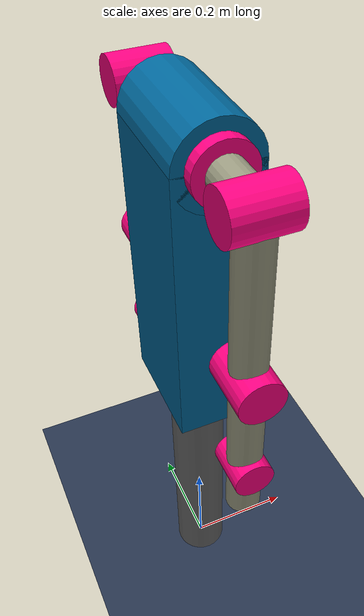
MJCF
<mujoco model="Dual Arm : Sample">
	<compiler angle="degree" coordinate="local" inertiafromgeom="true" autolimits="true" texturedir="PNG"/>

	<option	timestep="0.0005" gravity="0 0 -9.81" integrator="Euler" o_solref="0.005 0.2" o_solimp="0.95 0.98 0.01 0.5 2"
					cone="elliptic" jacobian="auto" solver="Newton" tolerance="1e-10" impratio="1.0"/>

	<option>
		<flag gravity="enable" sensornoise="disable" override="enable"/>
	</option>

	<visual>
		<global fovy="45" linewidth="2" glow="0.3"/>
		<quality shadowsize="4096" numslices="28"/>
		<map stiffness="50" stiffnessrot="100"/>
		<scale forcewidth="0.03" contactwidth="0.15" contactheight="0.1" connect="0.1" com="0.2" jointlength="2.5" jointwidth="0.05"
					 actuatorlength="0.5" actuatorwidth="0.3" framelength="1" framewidth="0.03"/>
		<rgba haze="0.6 0.8 0.9 1" force="0 1 0 0.5" com="0 0 1 1"/>
	</visual>

	<default>
		<geom contype="1" conaffinity="1" condim="3" material="MatLink"/>
		<joint limited="false" damping="0.5" armature="0.1" stiffness="0" frictionloss="0.1"/>
		<motor gear="100 0 0 0 0 0" ctrllimited="true" ctrlrange="-100 100"/>
	</default>

	<asset>
		<texture name="sky"      type="skybox" builtin="gradient" width="512" height="512" rgb1="1.0 1.0 1.0" rgb2="0.6 0.8 1.0"/>
		<texture name="texgeom"  type="cube"   builtin="flat"     width="512" height="512" rgb1="0.8 0.6 0.4" rgb2="0.8 0.6 0.4"
						 mark="cross" markrgb="1 1 1"/>
		<texture name="texplane" type="2d"     builtin="checker"  width="512" height="512" rgb1="0.2 0.3 0.4" rgb2="0.1 0.1 0.2"
						 mark="edge"  markrgb="1 1 1"/>

		<material name="MatGnd"   emission="0" reflectance="1" specular="1" shininess="1" rgba="0 0.4 0.5 1"/>
		<material name="MatGeom"  texture="texgeom" texuniform="true"/>
		<material name="MatLink"   emission="0" reflectance="1" specular="1" shininess="0.6" rgba="0 0.4 0.5 1"/>
		<material name="MatPlane" texture="texplane" reflectance='0' texrepeat="1 1" texuniform="true"/>
	</asset>

	<worldbody>
		<light directional="true" pos=" 5 -5 5" dir="-0.5  0.5 -1" diffuse="0.3 0.3 0.3" specular="0.0 0.0 0.0" castshadow="false"/>
		<light directional="true" pos=" 5  5 5" dir="-0.5 -0.5 -1" diffuse="0.3 0.3 0.3" specular="0.0 0.0 0.0" castshadow="false"/>
		<light directional="true" pos="-5  5 5" dir=" 0.5 -0.5 -1" diffuse="0.3 0.3 0.3" specular="0.0 0.0 0.0" castshadow="false"/>
		<light directional="true" pos="-5 -5 5" dir=" 0.5  0.5 -1" diffuse="0.3 0.3 0.3" specular="0.0 0.0 0.0" castshadow="false"/>
		<!--light directional="true" pos=" 0  0 5" dir=" 0.0  0.0 -1" diffuse="0.1 0.1 0.1" specular="0.1 0.1 0.1" castshadow="false"/-->

		<!-- Ground Floor -->
		<geom name="Ground Floor" type="plane" pos="0 0 0" size="0 0 100" material="MatPlane"/>
		<geom type="cylinder" pos="0 0 0.25" euler="0 0 0" size="0.05 0.25" rgba="0.4 0.4 0.4 1"/>

		<!-- Torso -->
		<body name="Torso" pos="0 0 0.5">
			<inertial pos="0 0 0.25" mass="20.0"/>
			<joint name="Torso-Yaw" pos="0 0 0" type="free" armature="0"/>
			<geom type="box" pos="0 0 0.25" euler="0 0 0" size="0.07 0.1 0.25" rgba="0 0.4 0.6 1"/>
			<geom type="cylinder" pos="0 0 0.5" euler="90 0 0" size="0.07 0.1" rgba="0 0.4 0.6 1"/>
			<geom type="cylinder" pos="0 -0.11 0.5" euler="90 0 0" size="0.05 0.01" rgba="1 0 0.5 1"/>
			<geom type="cylinder" pos="0  0.11 0.5" euler="90 0 0" size="0.05 0.01" rgba="1 0 0.5 1"/>

			<!-- Right Arm -->
			<body name="Right Shoulder Pitch" pos="0 -0.1 0.5" euler="90 0 0">
				<inertial pos="0 0 0" mass="1.5"/>
				<joint name="RS-Pitch" pos="0 0 0" type="hinge" axis="0 0 1"/>
				<geom type="cylinder" pos="0 0 0.05" size="0.03 0.03" rgba="0.6 0.6 0.5 1"/>

				<body name="Right Shoulder Roll" pos="0 0 0.1" euler="0 90 0">
					<inertial pos="0 -0.15 0" mass="1.5"/>
					<joint name="RS-Roll" pos="0 0 0" type="hinge" axis="0 0 1" limited="true" range="-150 5"/>
					<geom type="cylinder" pos="0 0 0" size="0.04 0.05" rgba="1 0 0.5 1"/>
					<geom type="cylinder" pos="0 -0.15 0" euler="90 0 0" size="0.03 0.15" rgba="0.6 0.6 0.5 1"/>

					<body name="Right Forearm" pos="0 -0.3 0" euler="0 -90 0">
						<inertial pos="0 -0.1 0" mass="1.5"/>
						<joint name="R-Elbow" pos="0 0 0" type="hinge" axis="0 0 1" limited="true" range="-5 150"/>
						<geom type="cylinder" pos="0 0 0" size="0.04 0.05" rgba="1 0 0.5 1"/>
						<geom type="cylinder" pos="0 -0.1 0" euler="90 0 0" size="0.03 0.1" rgba="0.6 0.6 0.5 1"/>

						<body name="Right Wrist" pos="0 -0.2 0" euler="0 0 0">
							<inertial pos="0 -0.05 0" mass="1.0"/>
							<joint name="R-Wrist" pos="0 0 0" type="hinge" axis="0 0 1"/>
							<geom type="cylinder" pos="0 0 0" size="0.035 0.04" rgba="1 0 0.5 1"/>
							<geom type="cylinder" pos="0 -0.05 0" euler="90 0 0" size="0.03 0.05" rgba="0.6 0.6 0.5 1"/>
							<site name="Right EE" type="sphere" pos="0 0 0" rgba="1 0 0 1"/>

						</body>
					</body>
				</body>
			</body>
			<!-- End of Right Arm -->

			<!-- Left Arm -->
			<body name="Left Shoulder Pitch" pos="0 0.1 0.5" euler="90 0 0">
				<inertial pos="0 0 0" mass="1.5"/>
				<joint name="LS-Pitch" pos="0 0 0" type="hinge" axis="0 0 1"/>
				<geom type="cylinder" pos="0 0 -0.05" size="0.03 0.03" rgba="0.6 0.6 0.5 1"/>

				<body name="Left Shoulder Roll" pos="0 0 -0.1" euler="0 90 0">
					<inertial pos="0 -0.15 0" mass="1.5"/>
					<joint name="LS-Roll" pos="0 0 0" type="hinge" axis="0 0 1" limited="true" range="-5 150"/>
					<geom type="cylinder" pos="0 0 0" size="0.04 0.05" rgba="1 0 0.5 1"/>
					<geom type="cylinder" pos="0 -0.15 0" euler="90 0 0" size="0.03 0.15" rgba="0.6 0.6 0.5 1"/>

					<body name="Left Forearm" pos="0 -0.3 0" euler="0 -90 0">
						<inertial pos="0 -0.1 0" mass="1.5"/>
						<joint name="L-Elbow" pos="0 0 0" type="hinge" axis="0 0 1" limited="true" range="-5 150"/>
						<geom type="cylinder" pos="0 0 0" size="0.04 0.05" rgba="1 0 0.5 1"/>
						<geom type="cylinder" pos="0 -0.1 0" euler="90 0 0" size="0.03 0.1" rgba="0.6 0.6 0.5 1"/>

						<body name="Left Wrist" pos="0 -0.2 0" euler="0 0 0">
							<inertial pos="0 -0.05 0" mass="1.0"/>
							<joint name="L-Wrist" pos="0 0 0" type="hinge" axis="0 0 1"/>
							<geom type="cylinder" pos="0 0 0" size="0.035 0.04" rgba="1 0 0.5 1"/>
							<geom type="cylinder" pos="0 -0.05 0" euler="90 0 0" size="0.03 0.05" rgba="0.6 0.6 0.5 1"/>
							<site name="Left EE" type="sphere" pos="0 0 0" rgba="1 0 0 1"/>

						</body>
					</body>
				</body>
			</body>	<!-- End of Left Arm -->
		</body>	<!-- End of Torso -->

	</worldbody>

	<actuator>
		<motor name="RS-P" gear="50 0 0 0 0 0" joint="RS-Pitch"/>
		<motor name="LS-P" gear="50 0 0 0 0 0" joint="LS-Pitch"/>
		<motor name="RS-R" gear="50 0 0 0 0 0" joint="RS-Roll"/>
		<motor name="LS-R" gear="50 0 0 0 0 0" joint="LS-Roll"/>
		<motor name="R-E" gear="50 0 0 0 0 0" joint="R-Elbow"/>
		<motor name="L-E" gear="50 0 0 0 0 0" joint="L-Elbow"/>
	</actuator>

	<sensor>
		<accelerometer name="Racc" site="Right EE"/>
		<accelerometer name="Lacc" site="Left EE"/>
	</sensor>
</mujoco>
